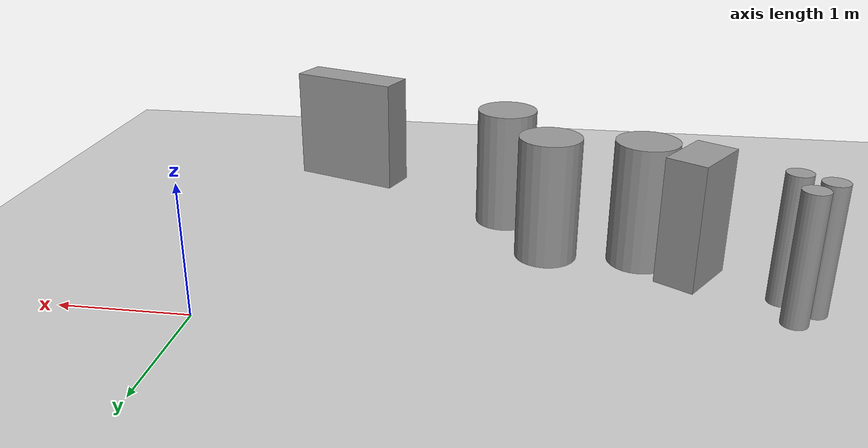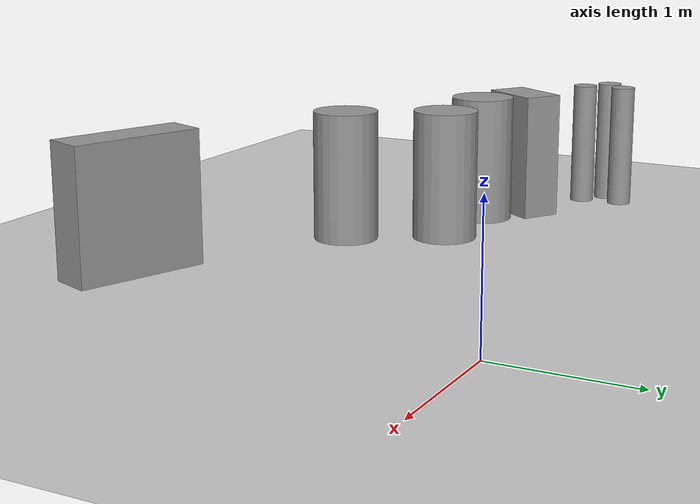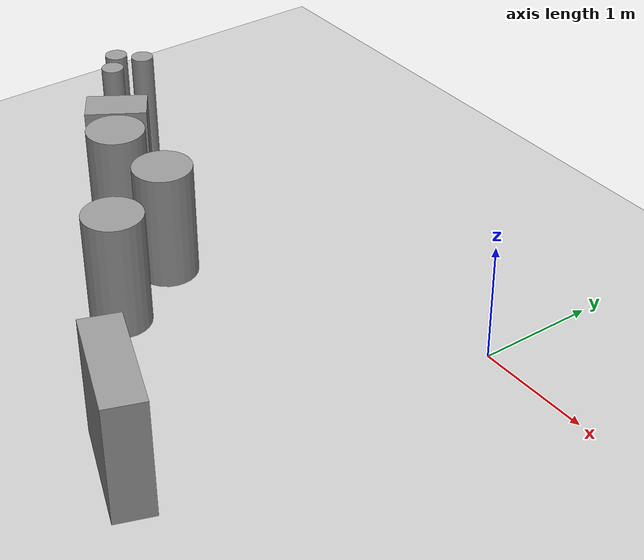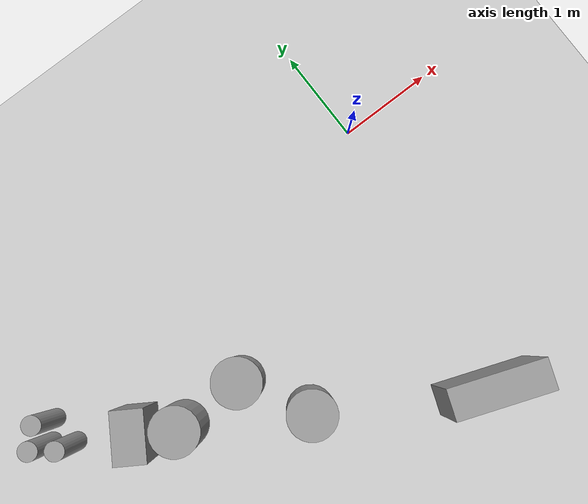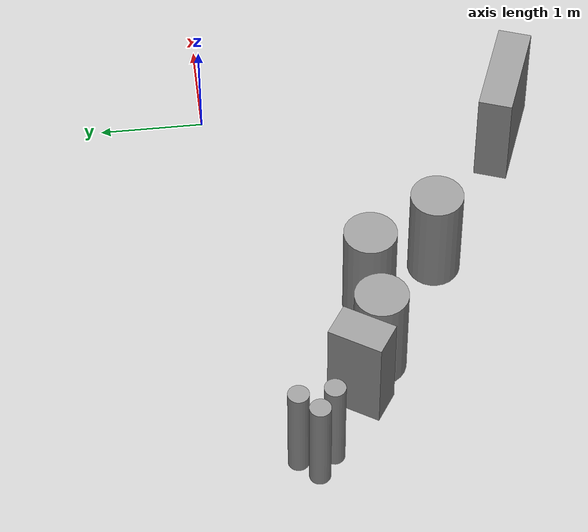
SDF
<sdf version="1.7">
 <world name="default">
  <model name="ground_plane">
   <static>1</static>
   <link name="link">
    <collision name="collision">
     <geometry><plane><normal>0 0 1</normal><size>100 100</size></plane></geometry>
     <surface>
      <contact><collide_bitmask>65535</collide_bitmask></contact>
      <friction><ode><mu>100</mu><mu2>50</mu2></ode></friction>
     </surface>
    </collision>
    <visual name="visual">
     <cast_shadows>0</cast_shadows>
     <geometry><plane><normal>0 0 1</normal><size>100 100</size></plane></geometry>
     <material>
      <script><uri>file://media/materials/scripts/gazebo.material</uri><name>Gazebo/Grey</name></script>
     </material>
    </visual>
   </link>
  </model>
  <model name="unit_cylinder_0_clone">
   <pose>-3.18118 -1.36905 0.499992 1e-06 0 -2.2e-05</pose>
   <link name="link">
    <inertial>
     <mass>1</mass>
     <inertia><ixx>0.145833</ixx><ixy>0</ixy><ixz>0</ixz><iyy>0.145833</iyy><iyz>0</iyz><izz>0.125</izz></inertia>
    </inertial>
    <collision name="collision">
     <geometry><cylinder><radius>0.248018</radius><length>1</length></cylinder></geometry>
    </collision>
    <visual name="visual">
     <geometry><cylinder><radius>0.248018</radius><length>1</length></cylinder></geometry>
     <material>
      <script><name>Gazebo/Grey</name><uri>file://media/materials/scripts/gazebo.material</uri></script>
     </material>
    </visual>
   </link>
  </model>
  <model name="unit_cylinder_0_clone_0">
   <pose>-2.44992 -1.36258 0.499992 1e-06 -0 -1.5e-05</pose>
   <link name="link">
    <inertial>
     <mass>1</mass>
     <inertia><ixx>0.145833</ixx><ixy>0</ixy><ixz>0</ixz><iyy>0.145833</iyy><iyz>0</iyz><izz>0.125</izz></inertia>
    </inertial>
    <collision name="collision">
     <geometry><cylinder><radius>0.248018</radius><length>1</length></cylinder></geometry>
    </collision>
    <visual name="visual">
     <geometry><cylinder><radius>0.248018</radius><length>1</length></cylinder></geometry>
     <material>
      <script><name>Gazebo/Grey</name><uri>file://media/materials/scripts/gazebo.material</uri></script>
     </material>
    </visual>
   </link>
  </model>
  <model name="unit_cylinder_0_clone_1">
   <pose>-2.07314 -2.03018 0.499992 1e-06 -1e-06 -2.3e-05</pose>
   <link name="link">
    <inertial>
     <mass>1</mass>
     <inertia><ixx>0.145833</ixx><ixy>0</ixy><ixz>0</ixz><iyy>0.145833</iyy><iyz>0</iyz><izz>0.125</izz></inertia>
    </inertial>
    <collision name="collision">
     <geometry><cylinder><radius>0.248018</radius><length>1</length></cylinder></geometry>
    </collision>
    <visual name="visual">
     <geometry><cylinder><radius>0.248018</radius><length>1</length></cylinder></geometry>
     <material>
      <script><name>Gazebo/Grey</name><uri>file://media/materials/scripts/gazebo.material</uri></script>
     </material>
    </visual>
   </link>
  </model>
  <model name="unit_box_1_clone_clone">
   <pose>-3.5499 -1.14744 0.5 0 -0 1.00677</pose>
   <link name="link">
    <inertial>
     <mass>1</mass>
     <inertia>
      <ixx>0.166667</ixx>
      <ixy>0</ixy>
      <ixz>0</ixz>
      <iyy>0.166667</iyy>
      <iyz>0</iyz>
      <izz>0.166667</izz>
     </inertia>
    </inertial>
    <collision name="collision"><geometry><box><size>0.519182 0.321828 1</size></box></geometry></collision>
    <visual name="visual">
     <geometry><box><size>0.519182 0.321828 1</size></box></geometry>
     <material>
      <script><name>Gazebo/Grey</name><uri>file://media/materials/scripts/gazebo.material</uri></script>
     </material>
    </visual>
   </link>
  </model>
  <model name="unit_box_1_clone_1_clone_clone">
   <pose>-0.528269 -2.91795 0.499998 -5e-06 6e-06 2.78827</pose>
   <link name="link">
    <inertial>
     <mass>1</mass>
     <inertia>
      <ixx>0.166667</ixx>
      <ixy>0</ixy>
      <ixz>0</ixz>
      <iyy>0.166667</iyy>
      <iyz>0</iyz>
      <izz>0.166667</izz>
     </inertia>
    </inertial>
    <collision name="collision"><geometry><box><size>1 0.321828 1</size></box></geometry></collision>
    <visual name="visual">
     <geometry><box><size>1 0.321828 1</size></box></geometry>
     <material>
      <script><name>Gazebo/Grey</name><uri>file://media/materials/scripts/gazebo.material</uri></script>
     </material>
    </visual>
   </link>
  </model>
  <model name="unit_cylinder_0_clone_3">
   <pose>-4.36104 -0.684499 0.499995 0 -0 0.001458</pose>
   <link name="link">
    <inertial>
     <mass>1</mass>
     <inertia><ixx>0.145833</ixx><ixy>0</ixy><ixz>0</ixz><iyy>0.145833</iyy><iyz>0</iyz><izz>0.125</izz></inertia>
    </inertial>
    <collision name="collision">
     <geometry><cylinder><radius>0.0969878</radius><length>1</length></cylinder></geometry>
    </collision>
    <visual name="visual">
     <geometry><cylinder><radius>0.0969878</radius><length>1</length></cylinder></geometry>
     <material>
      <script><name>Gazebo/Grey</name><uri>file://media/materials/scripts/gazebo.material</uri></script>
     </material>
    </visual>
   </link>
  </model>
  <model name="unit_cylinder_0_clone_5">
   <pose>-4.19444 -0.513153 0.499995 0 -0 0.001458</pose>
   <link name="link">
    <inertial>
     <mass>1</mass>
     <inertia><ixx>0.145833</ixx><ixy>0</ixy><ixz>0</ixz><iyy>0.145833</iyy><iyz>0</iyz><izz>0.125</izz></inertia>
    </inertial>
    <collision name="collision">
     <geometry><cylinder><radius>0.0969878</radius><length>1</length></cylinder></geometry>
    </collision>
    <visual name="visual">
     <geometry><cylinder><radius>0.0969878</radius><length>1</length></cylinder></geometry>
     <material>
      <script><name>Gazebo/Grey</name><uri>file://media/materials/scripts/gazebo.material</uri></script>
     </material>
    </visual>
   </link>
  </model>
  <model name="unit_cylinder_0_clone_6">
   <pose>-4.16171 -0.835237 0.499995 0 -0 0.001456</pose>
   <link name="link">
    <inertial>
     <mass>1</mass>
     <inertia><ixx>0.145833</ixx><ixy>0</ixy><ixz>0</ixz><iyy>0.145833</iyy><iyz>0</iyz><izz>0.125</izz></inertia>
    </inertial>
    <collision name="collision">
     <geometry><cylinder><radius>0.0969878</radius><length>1</length></cylinder></geometry>
    </collision>
    <visual name="visual">
     <geometry><cylinder><radius>0.0969878</radius><length>1</length></cylinder></geometry>
     <material>
      <script><name>Gazebo/Grey</name><uri>file://media/materials/scripts/gazebo.material</uri></script>
     </material>
    </visual>
   </link>
  </model>
 </world>
</sdf>
